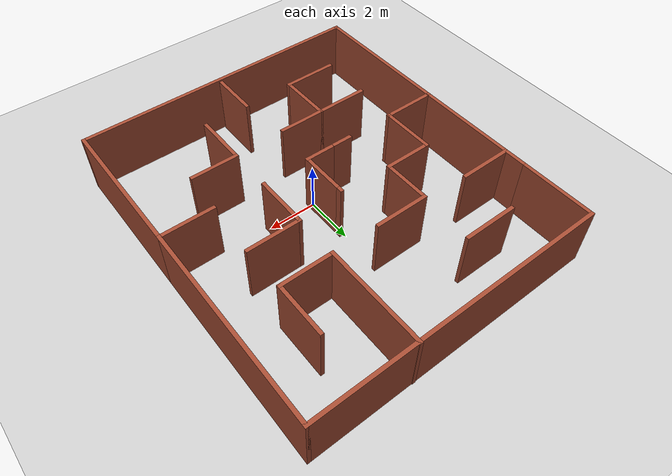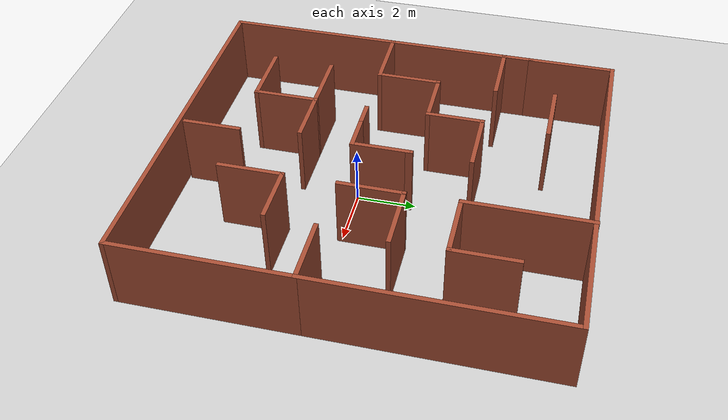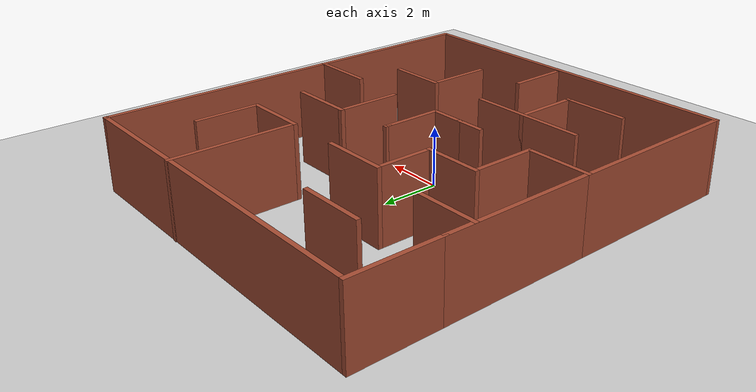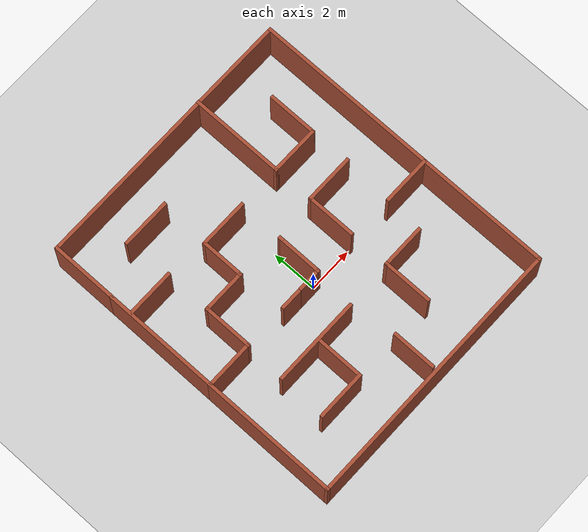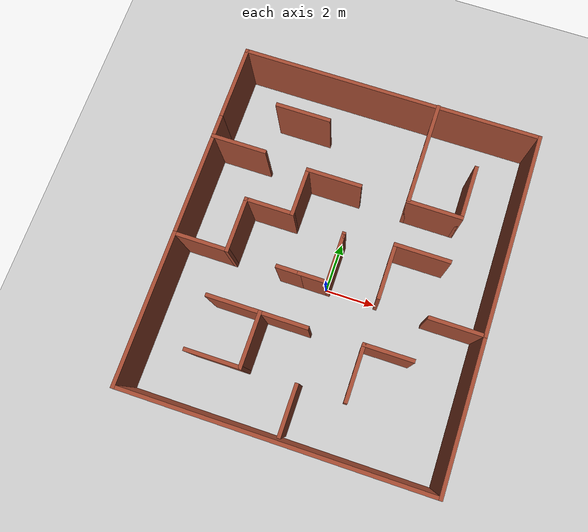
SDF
<sdf version="1.7">
 <world name="default">
  <light name="sun" type="directional">
   <pose>0 0 10 0 -0 0</pose>
   <diffuse>0.8 0.8 0.8 1</diffuse>
   <specular>0.2 0.2 0.2 1</specular>
   <attenuation>
    <range>1000</range>
    <constant>0.9</constant>
    <linear>0.01</linear>
    <quadratic>0.001</quadratic>
   </attenuation>
   <direction>-0.5 0.1 -0.9</direction>
   <spot><inner_angle>0</inner_angle><outer_angle>0</outer_angle><falloff>0</falloff></spot>
  </light>
  <model name="ground_plane">
   <static>1</static>
   <link name="link">
    <collision name="collision">
     <geometry><plane><normal>0 0 1</normal><size>100 100</size></plane></geometry>
     <surface>
      <contact><collide_bitmask>65535</collide_bitmask></contact>
      <friction><ode><mu>100</mu><mu2>50</mu2></ode></friction>
     </surface>
    </collision>
    <visual name="visual">
     <cast_shadows>0</cast_shadows>
     <geometry><plane><normal>0 0 1</normal><size>100 100</size></plane></geometry>
     <material>
      <script><uri>file://media/materials/scripts/gazebo.material</uri><name>Gazebo/Grey</name></script>
     </material>
    </visual>
   </link>
  </model>
  <gravity>0 0 -9.8</gravity>
  <magnetic_field>6e-06 2.3e-05 -4.2e-05</magnetic_field>
  <atmosphere type="adiabatic"/>
  <physics type="ode">
   <max_step_size>0.001</max_step_size>
   <real_time_factor>1</real_time_factor>
   <real_time_update_rate>1000</real_time_update_rate>
  </physics>
  <scene><ambient>0.4 0.4 0.4 1</ambient><background>0.7 0.7 0.7 1</background><shadows>1</shadows></scene>
  <audio><device>default</device></audio>
  <spherical_coordinates>
   <surface_model>EARTH_WGS84</surface_model>
   <latitude_deg>0</latitude_deg>
   <longitude_deg>0</longitude_deg>
   <elevation>0</elevation>
   <heading_deg>0</heading_deg>
  </spherical_coordinates>
  <model name="_miro">
   <pose>0.1155 0.917977 0 0 -0 0</pose>
   <link name="Wall_11">
    <collision name="Wall_11_Collision">
     <geometry><box><size>1 0.15 2.5</size></box></geometry>
     <pose>0 0 1.25 0 -0 0</pose>
    </collision>
    <visual name="Wall_11_Visual">
     <pose>0 0 1.25 0 -0 0</pose>
     <geometry><box><size>1 0.15 2.5</size></box></geometry>
     <material>
      <script><uri>file://media/materials/scripts/gazebo.material</uri><name>Gazebo/Bricks</name></script>
      <ambient>1 1 1 1</ambient>
     </material>
     <meta><layer>0</layer></meta>
    </visual>
    <pose>-1.525 -1.0389 0 0 -0 3.14159</pose>
   </link>
   <link name="Wall_14">
    <collision name="Wall_14_Collision">
     <geometry><box><size>2.25 0.15 2.5</size></box></geometry>
     <pose>0 0 1.25 0 -0 0</pose>
    </collision>
    <visual name="Wall_14_Visual">
     <pose>0 0 1.25 0 -0 0</pose>
     <geometry><box><size>2.25 0.15 2.5</size></box></geometry>
     <material>
      <script><uri>file://media/materials/scripts/gazebo.material</uri><name>Gazebo/Bricks</name></script>
      <ambient>1 1 1 1</ambient>
     </material>
     <meta><layer>0</layer></meta>
    </visual>
    <pose>-1.05 2.9111 0 0 -0 3.14159</pose>
   </link>
   <link name="Wall_15">
    <collision name="Wall_15_Collision">
     <geometry><box><size>2 0.15 2.5</size></box></geometry>
     <pose>0 0 1.25 0 -0 0</pose>
    </collision>
    <visual name="Wall_15_Visual">
     <pose>0 0 1.25 0 -0 0</pose>
     <geometry><box><size>2 0.15 2.5</size></box></geometry>
     <material>
      <script><uri>file://media/materials/scripts/gazebo.material</uri><name>Gazebo/Bricks</name></script>
      <ambient>1 1 1 1</ambient>
     </material>
     <meta><layer>0</layer></meta>
    </visual>
    <pose>-2.1 1.9861 0 0 -0 -1.5708</pose>
   </link>
   <link name="Wall_16">
    <collision name="Wall_16_Collision">
     <geometry><box><size>2 0.15 2.5</size></box></geometry>
     <pose>0 0 1.25 0 -0 0</pose>
    </collision>
    <visual name="Wall_16_Visual">
     <pose>0 0 1.25 0 -0 0</pose>
     <geometry><box><size>2 0.15 2.5</size></box></geometry>
     <material>
      <script><uri>file://media/materials/scripts/gazebo.material</uri><name>Gazebo/Bricks</name></script>
      <ambient>1 1 1 1</ambient>
     </material>
     <meta><layer>0</layer></meta>
    </visual>
    <pose>-3.025 1.0611 0 0 -0 3.14159</pose>
   </link>
   <link name="Wall_17">
    <collision name="Wall_17_Collision">
     <geometry><box><size>2.25 0.15 2.5</size></box></geometry>
     <pose>0 0 1.25 0 -0 0</pose>
    </collision>
    <visual name="Wall_17_Visual">
     <pose>0 0 1.25 0 -0 0</pose>
     <geometry><box><size>2.25 0.15 2.5</size></box></geometry>
     <material>
      <script><uri>file://media/materials/scripts/gazebo.material</uri><name>Gazebo/Bricks</name></script>
      <ambient>1 1 1 1</ambient>
     </material>
     <meta><layer>0</layer></meta>
    </visual>
    <pose>-3.95 0.011096 0 0 -0 -1.5708</pose>
   </link>
   <link name="Wall_18">
    <collision name="Wall_18_Collision">
     <geometry><box><size>2.25 0.15 2.5</size></box></geometry>
     <pose>0 0 1.25 0 -0 0</pose>
    </collision>
    <visual name="Wall_18_Visual">
     <pose>0 0 1.25 0 -0 0</pose>
     <geometry><box><size>2.25 0.15 2.5</size></box></geometry>
     <material>
      <script><uri>file://media/materials/scripts/gazebo.material</uri><name>Gazebo/Bricks</name></script>
      <ambient>1 1 1 1</ambient>
     </material>
     <meta><layer>0</layer></meta>
    </visual>
    <pose>-5 -1.0389 0 0 -0 3.14159</pose>
   </link>
   <link name="Wall_19">
    <collision name="Wall_19_Collision">
     <geometry><box><size>5.25 0.15 2.5</size></box></geometry>
     <pose>0 0 1.25 0 -0 0</pose>
    </collision>
    <visual name="Wall_19_Visual">
     <pose>0 0 1.25 0 -0 0</pose>
     <geometry><box><size>5.25 0.15 2.5</size></box></geometry>
     <material>
      <script><uri>file://media/materials/scripts/gazebo.material</uri><name>Gazebo/Bricks</name></script>
      <ambient>1 1 1 1</ambient>
     </material>
     <meta><layer>0</layer></meta>
    </visual>
    <pose>-6.05 1.5111 0 0 -0 1.5708</pose>
   </link>
   <link name="Wall_23">
    <collision name="Wall_23_Collision">
     <geometry><box><size>3.0532 0.15 2.5</size></box></geometry>
     <pose>0 0 1.25 0 -0 0</pose>
    </collision>
    <visual name="Wall_23_Visual">
     <pose>0 0 1.25 0 -0 0</pose>
     <geometry><box><size>3.0532 0.15 2.5</size></box></geometry>
     <material>
      <script><uri>file://media/materials/scripts/gazebo.material</uri><name>Gazebo/Bricks</name></script>
      <ambient>1 1 1 1</ambient>
     </material>
     <meta><layer>0</layer></meta>
    </visual>
    <pose>-6.05 5.5127 0 0 -0 1.5708</pose>
   </link>
   <link name="Wall_27">
    <collision name="Wall_27_Collision">
     <geometry><box><size>4.25 0.15 2.5</size></box></geometry>
     <pose>0 0 1.25 0 -0 0</pose>
    </collision>
    <visual name="Wall_27_Visual">
     <pose>0 0 1.25 0 -0 0</pose>
     <geometry><box><size>4.25 0.15 2.5</size></box></geometry>
     <material>
      <script><uri>file://media/materials/scripts/gazebo.material</uri><name>Gazebo/Bricks</name></script>
      <ambient>1 1 1 1</ambient>
     </material>
     <meta><layer>0</layer></meta>
    </visual>
    <pose>1.93159 4.9357 0 0 -0 1.5708</pose>
   </link>
   <link name="Wall_36">
    <collision name="Wall_36_Collision">
     <geometry><box><size>2.25 0.15 2.5</size></box></geometry>
     <pose>0 0 1.25 0 -0 0</pose>
    </collision>
    <visual name="Wall_36_Visual">
     <pose>0 0 1.25 0 -0 0</pose>
     <geometry><box><size>2.25 0.15 2.5</size></box></geometry>
     <material>
      <script><uri>file://media/materials/scripts/gazebo.material</uri><name>Gazebo/Bricks</name></script>
      <ambient>1 1 1 1</ambient>
     </material>
     <meta><layer>0</layer></meta>
    </visual>
    <pose>-3.0436 5.12369 0 0 -0 0</pose>
   </link>
   <link name="Wall_40">
    <collision name="Wall_40_Collision">
     <geometry><box><size>2.25 0.15 2.5</size></box></geometry>
     <pose>0 0 1.25 0 -0 0</pose>
    </collision>
    <visual name="Wall_40_Visual">
     <pose>0 0 1.25 0 -0 0</pose>
     <geometry><box><size>2.25 0.15 2.5</size></box></geometry>
     <material>
      <script><uri>file://media/materials/scripts/gazebo.material</uri><name>Gazebo/Bricks</name></script>
      <ambient>1 1 1 1</ambient>
     </material>
     <meta><layer>0</layer></meta>
    </visual>
    <pose>-4.99444 3.09439 0 0 -0 0</pose>
   </link>
   <link name="Wall_43">
    <collision name="Wall_43_Collision">
     <geometry><box><size>12.25 0.15 2.5</size></box></geometry>
     <pose>0 0 1.25 0 -0 0</pose>
    </collision>
    <visual name="Wall_43_Visual">
     <pose>0 0 1.25 0 -0 0</pose>
     <geometry><box><size>12.25 0.15 2.5</size></box></geometry>
     <material>
      <script><uri>file://media/materials/scripts/gazebo.material</uri><name>Gazebo/Bricks</name></script>
      <ambient>1 1 1 1</ambient>
     </material>
     <meta><layer>0</layer></meta>
    </visual>
    <pose>-0 6.9643 0 0 -0 0</pose>
   </link>
   <link name="Wall_44">
    <collision name="Wall_44_Collision">
     <geometry><box><size>8.25 0.15 2.5</size></box></geometry>
     <pose>0 0 1.25 0 -0 0</pose>
    </collision>
    <visual name="Wall_44_Visual">
     <pose>0 0 1.25 0 -0 0</pose>
     <geometry><box><size>8.25 0.15 2.5</size></box></geometry>
     <material>
      <script><uri>file://media/materials/scripts/gazebo.material</uri><name>Gazebo/Bricks</name></script>
      <ambient>1 1 1 1</ambient>
     </material>
     <meta><layer>0</layer></meta>
    </visual>
    <pose>6.05 2.9143 0 0 -0 -1.5708</pose>
   </link>
   <link name="Wall_46">
    <collision name="Wall_46_Collision">
     <geometry><box><size>2.25 0.15 2.5</size></box></geometry>
     <pose>0 0 1.25 0 -0 0</pose>
    </collision>
    <visual name="Wall_46_Visual">
     <pose>0 0 1.25 0 -0 0</pose>
     <geometry><box><size>2.25 0.15 2.5</size></box></geometry>
     <material>
      <script><uri>file://media/materials/scripts/gazebo.material</uri><name>Gazebo/Bricks</name></script>
      <ambient>1 1 1 1</ambient>
     </material>
     <meta><layer>0</layer></meta>
    </visual>
    <pose>2.98158 2.8857 0 0 -0 0</pose>
   </link>
   <link name="Wall_47">
    <collision name="Wall_47_Collision">
     <geometry><box><size>2.25 0.15 2.5</size></box></geometry>
     <pose>0 0 1.25 0 -0 0</pose>
    </collision>
    <visual name="Wall_47_Visual">
     <pose>0 0 1.25 0 -0 0</pose>
     <geometry><box><size>2.25 0.15 2.5</size></box></geometry>
     <material>
      <script><uri>file://media/materials/scripts/gazebo.material</uri><name>Gazebo/Bricks</name></script>
      <ambient>1 1 1 1</ambient>
     </material>
     <meta><layer>0</layer></meta>
    </visual>
    <pose>4.03158 3.9357 0 0 -0 1.5708</pose>
   </link>
   <link name="Wall_49">
    <collision name="Wall_49_Collision">
     <geometry><box><size>2.25 0.15 2.5</size></box></geometry>
     <pose>0 0 1.25 0 -0 0</pose>
    </collision>
    <visual name="Wall_49_Visual">
     <pose>0 0 1.25 0 -0 0</pose>
     <geometry><box><size>2.25 0.15 2.5</size></box></geometry>
     <material>
      <script><uri>file://media/materials/scripts/gazebo.material</uri><name>Gazebo/Bricks</name></script>
      <ambient>1 1 1 1</ambient>
     </material>
     <meta><layer>0</layer></meta>
    </visual>
    <pose>3.01558 1.11511 0 0 -0 3.14159</pose>
   </link>
   <link name="Wall_5">
    <collision name="Wall_5_Collision">
     <geometry><box><size>1.25 0.15 2.5</size></box></geometry>
     <pose>0 0 1.25 0 -0 0</pose>
    </collision>
    <visual name="Wall_5_Visual">
     <pose>0 0 1.25 0 -0 0</pose>
     <geometry><box><size>1.25 0.15 2.5</size></box></geometry>
     <material>
      <script><uri>file://media/materials/scripts/gazebo.material</uri><name>Gazebo/Bricks</name></script>
      <ambient>1 1 1 1</ambient>
     </material>
     <meta><layer>0</layer></meta>
    </visual>
    <pose>-0.55 -1.0389 0 0 -0 0</pose>
   </link>
   <link name="Wall_52">
    <collision name="Wall_52_Collision">
     <geometry><box><size>2.25 0.15 2.5</size></box></geometry>
     <pose>0 0 1.25 0 -0 0</pose>
    </collision>
    <visual name="Wall_52_Visual">
     <pose>0 0 1.25 0 -0 0</pose>
     <geometry><box><size>2.25 0.15 2.5</size></box></geometry>
     <material>
      <script><uri>file://media/materials/scripts/gazebo.material</uri><name>Gazebo/Bricks</name></script>
      <ambient>1 1 1 1</ambient>
     </material>
     <meta><layer>0</layer></meta>
    </visual>
    <pose>1.96558 0.065114 0 0 -0 -1.5708</pose>
   </link>
   <link name="Wall_56">
    <collision name="Wall_56_Collision">
     <geometry><box><size>2.25 0.15 2.5</size></box></geometry>
     <pose>0 0 1.25 0 -0 0</pose>
    </collision>
    <visual name="Wall_56_Visual">
     <pose>0 0 1.25 0 -0 0</pose>
     <geometry><box><size>2.25 0.15 2.5</size></box></geometry>
     <material>
      <script><uri>file://media/materials/scripts/gazebo.material</uri><name>Gazebo/Bricks</name></script>
      <ambient>1 1 1 1</ambient>
     </material>
     <meta><layer>0</layer></meta>
    </visual>
    <pose>5 -1.1357 0 0 -0 3.14159</pose>
   </link>
   <link name="Wall_58">
    <collision name="Wall_58_Collision">
     <geometry><box><size>6 0.15 2.5</size></box></geometry>
     <pose>0 0 1.25 0 -0 0</pose>
    </collision>
    <visual name="Wall_58_Visual">
     <pose>0 0 1.25 0 -0 0</pose>
     <geometry><box><size>6 0.15 2.5</size></box></geometry>
     <material>
      <script><uri>file://media/materials/scripts/gazebo.material</uri><name>Gazebo/Bricks</name></script>
      <ambient>1 1 1 1</ambient>
     </material>
     <meta><layer>0</layer></meta>
    </visual>
    <pose>6.05 -4.0607 0 0 -0 -1.5708</pose>
   </link>
   <link name="Wall_62">
    <collision name="Wall_62_Collision">
     <geometry><box><size>2 0.15 2.5</size></box></geometry>
     <pose>0 0 1.25 0 -0 0</pose>
    </collision>
    <visual name="Wall_62_Visual">
     <pose>0 0 1.25 0 -0 0</pose>
     <geometry><box><size>2 0.15 2.5</size></box></geometry>
     <material>
      <script><uri>file://media/materials/scripts/gazebo.material</uri><name>Gazebo/Bricks</name></script>
      <ambient>1 1 1 1</ambient>
     </material>
     <meta><layer>0</layer></meta>
    </visual>
    <pose>2.89586 -2.80043 0 0 -0 3.14159</pose>
   </link>
   <link name="Wall_63">
    <collision name="Wall_63_Collision">
     <geometry><box><size>2.25 0.15 2.5</size></box></geometry>
     <pose>0 0 1.25 0 -0 0</pose>
    </collision>
    <visual name="Wall_63_Visual">
     <pose>0 0 1.25 0 -0 0</pose>
     <geometry><box><size>2.25 0.15 2.5</size></box></geometry>
     <material>
      <script><uri>file://media/materials/scripts/gazebo.material</uri><name>Gazebo/Bricks</name></script>
      <ambient>1 1 1 1</ambient>
     </material>
     <meta><layer>0</layer></meta>
    </visual>
    <pose>1.97086 -3.85044 0 0 -0 -1.5708</pose>
   </link>
   <link name="Wall_66">
    <collision name="Wall_66_Collision">
     <geometry><box><size>4 0.15 2.5</size></box></geometry>
     <pose>0 0 1.25 0 -0 0</pose>
    </collision>
    <visual name="Wall_66_Visual">
     <pose>0 0 1.25 0 -0 0</pose>
     <geometry><box><size>4 0.15 2.5</size></box></geometry>
     <material>
      <script><uri>file://media/materials/scripts/gazebo.material</uri><name>Gazebo/Bricks</name></script>
      <ambient>1 1 1 1</ambient>
     </material>
     <meta><layer>0</layer></meta>
    </visual>
    <pose>-2.11146 -2.86162 0 0 -0 3.14159</pose>
   </link>
   <link name="Wall_73">
    <collision name="Wall_73_Collision">
     <geometry><box><size>12.25 0.15 2.5</size></box></geometry>
     <pose>0 0 1.25 0 -0 0</pose>
    </collision>
    <visual name="Wall_73_Visual">
     <pose>0 0 1.25 0 -0 0</pose>
     <geometry><box><size>12.25 0.15 2.5</size></box></geometry>
     <material>
      <script><uri>file://media/materials/scripts/gazebo.material</uri><name>Gazebo/Bricks</name></script>
      <ambient>1 1 1 1</ambient>
     </material>
     <meta><layer>0</layer></meta>
    </visual>
    <pose>-0 -6.9857 0 0 -0 3.14159</pose>
   </link>
   <link name="Wall_74">
    <collision name="Wall_74_Collision">
     <geometry><box><size>6.0968 0.15 2.5</size></box></geometry>
     <pose>0 0 1.25 0 -0 0</pose>
    </collision>
    <visual name="Wall_74_Visual">
     <pose>0 0 1.25 0 -0 0</pose>
     <geometry><box><size>6.0968 0.15 2.5</size></box></geometry>
     <material>
      <script><uri>file://media/materials/scripts/gazebo.material</uri><name>Gazebo/Bricks</name></script>
      <ambient>1 1 1 1</ambient>
     </material>
     <meta><layer>0</layer></meta>
    </visual>
    <pose>-6.05 -4.0123 0 0 -0 1.5708</pose>
   </link>
   <link name="Wall_76">
    <collision name="Wall_76_Collision">
     <geometry><box><size>2 0.15 2.5</size></box></geometry>
     <pose>0 0 1.25 0 -0 0</pose>
    </collision>
    <visual name="Wall_76_Visual">
     <pose>0 0 1.25 0 -0 0</pose>
     <geometry><box><size>2 0.15 2.5</size></box></geometry>
     <material>
      <script><uri>file://media/materials/scripts/gazebo.material</uri><name>Gazebo/Bricks</name></script>
      <ambient>1 1 1 1</ambient>
     </material>
     <meta><layer>0</layer></meta>
    </visual>
    <pose>0.119441 -5.83616 0 0 -0 -1.5708</pose>
   </link>
   <link name="Wall_78">
    <collision name="Wall_78_Collision">
     <geometry><box><size>2.25 0.15 2.5</size></box></geometry>
     <pose>0 0 1.25 0 -0 0</pose>
    </collision>
    <visual name="Wall_78_Visual">
     <pose>0 0 1.25 0 -0 0</pose>
     <geometry><box><size>2.25 0.15 2.5</size></box></geometry>
     <material>
      <script><uri>file://media/materials/scripts/gazebo.material</uri><name>Gazebo/Bricks</name></script>
      <ambient>1 1 1 1</ambient>
     </material>
     <meta><layer>0</layer></meta>
    </visual>
    <pose>-1.99128 -3.91162 0 0 -0 -1.5708</pose>
   </link>
   <link name="Wall_79">
    <collision name="Wall_79_Collision">
     <geometry><box><size>2.25 0.15 2.5</size></box></geometry>
     <pose>0 0 1.25 0 -0 0</pose>
    </collision>
    <visual name="Wall_79_Visual">
     <pose>0 0 1.25 0 -0 0</pose>
     <geometry><box><size>2.25 0.15 2.5</size></box></geometry>
     <material>
      <script><uri>file://media/materials/scripts/gazebo.material</uri><name>Gazebo/Bricks</name></script>
      <ambient>1 1 1 1</ambient>
     </material>
     <meta><layer>0</layer></meta>
    </visual>
    <pose>-3.04128 -4.96162 0 0 -0 3.14159</pose>
   </link>
   <link name="Wall_8">
    <collision name="Wall_8_Collision">
     <geometry><box><size>2 0.15 2.5</size></box></geometry>
     <pose>0 0 1.25 0 -0 0</pose>
    </collision>
    <visual name="Wall_8_Visual">
     <pose>0 0 1.25 0 -0 0</pose>
     <geometry><box><size>2 0.15 2.5</size></box></geometry>
     <material>
      <script><uri>file://media/materials/scripts/gazebo.material</uri><name>Gazebo/Bricks</name></script>
      <ambient>1 1 1 1</ambient>
     </material>
     <meta><layer>0</layer></meta>
    </visual>
    <pose>-0 -0.113904 0 0 -0 1.5708</pose>
   </link>
   <link name="Wall_9">
    <collision name="Wall_9_Collision">
     <geometry><box><size>0.25 0.15 2.5</size></box></geometry>
     <pose>0 0 1.25 0 -0 0</pose>
    </collision>
    <visual name="Wall_9_Visual">
     <pose>0 0 1.25 0 -0 0</pose>
     <geometry><box><size>0.25 0.15 2.5</size></box></geometry>
     <material>
      <script><uri>file://media/materials/scripts/gazebo.material</uri><name>Gazebo/Bricks</name></script>
      <ambient>1 1 1 1</ambient>
     </material>
     <meta><layer>0</layer></meta>
    </visual>
    <pose>-0 0.861097 0 0 -0 1.5708</pose>
   </link>
   <static>1</static>
  </model>
 </world>
</sdf>
